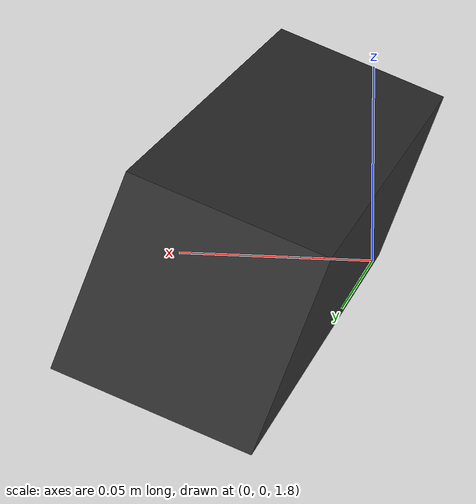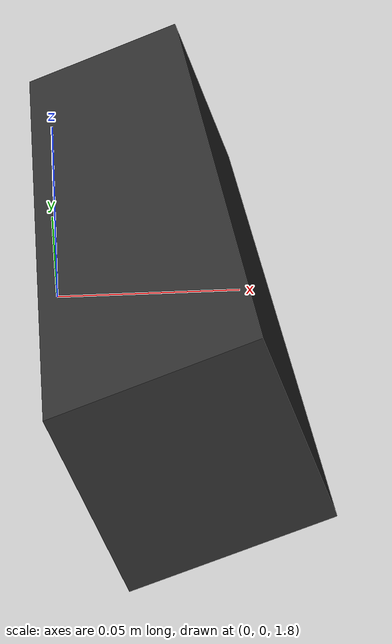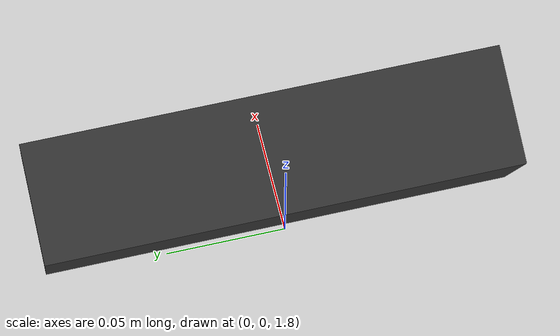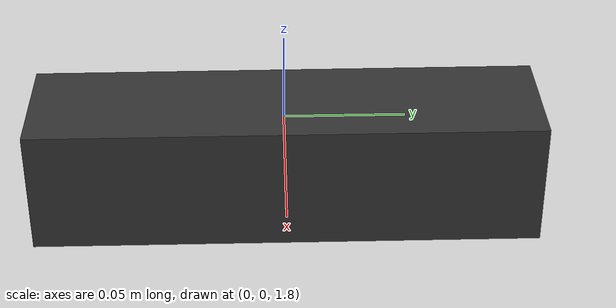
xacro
<?xml version="1.0"?>
<robot xmlns:xacro="http://www.ros.org/wiki/xacro" name="kinect_link">
 <!-- ADD a Kinect sensor: first the visual/collision/inertial box -->
  <link name="world">
      <origin xyz="0.0 0.0 0.0"/>
  </link>
    <link name="base_link">
  </link>

  <joint name="kinect_jnt" type="fixed">
      <parent link="base_link"/>
      <child link="kinect_link"/>
      <!--origin rpy="0.0 1.5708 1.5708" xyz="0 0.0 0.5"/-->
      <axis xyz="0 1 0" />
      <origin xyz="0.027 0.0 1.810" rpy="0.0 1.2 0"/>
  </joint>

    <joint name="world_jnt" type="fixed">
      <parent link="world"/>
      <child link="base_link"/>
  </joint>

    <link name="kinect_link">
      <collision>
          <origin xyz="0 0 0" rpy="0 0 0"/>
          <geometry>
              <!-- coarse model; a simple box -->
              <box size="0.05 0.2 0.05"/>
          </geometry>
      </collision>

      <visual>
          <origin xyz="0 0 0" rpy="0 0 0" />
          <geometry>
              <box size="0.05 0.2 0.05" />
          </geometry>
          <material name="kinect_gray">
              <color rgba="0.2 0.2 0.2 1.0"/>
          </material>
      </visual>

      <inertial>
          <mass value="0.1" />
          <origin xyz="0 0 0" rpy="0 0 0"/>
          <inertia ixx="0.001" ixy="0" ixz="0" iyy="0.001" iyz="0" izz="0.001" />
      </inertial>
  </link>
  <!--the above displays a box meant to imply Kinect-->
  <!--now set the position/orientation of the above box: -->
<!-- end wsn adding kinect link; -->

  <!-- wsn: add kinect sensor emulation -->
<gazebo reference="kinect_link">
    <sensor type="depth" name="openni_camera_camera">
        <always_on>1</always_on>
        <visualize>true</visualize>
        <camera>
            <horizontal_fov>1.047</horizontal_fov>
            <image>
                <width>640</width>
                <height>480</height>
                <format>R8G8B8</format>
            </image>
            <depth_camera>

            </depth_camera>
            <clip>
                <near>0.1</near>
                <far>100</far>
            </clip>
        </camera>
        <plugin name="camera_controller" filename="libgazebo_ros_openni_kinect.so">
            <alwaysOn>true</alwaysOn>
                <updateRate>10.0</updateRate>
                <cameraName>kinect</cameraName>
                <frameName>kinect_pc_frame</frameName>
            <imageTopicName>rgb/image_raw</imageTopicName>
            <depthImageTopicName>depth/image_raw</depthImageTopicName>
            <pointCloudTopicName>depth/points</pointCloudTopicName>
            <cameraInfoTopicName>rgb/camera_info</cameraInfoTopicName>
            <depthImageCameraInfoTopicName>depth/camera_info</depthImageCameraInfoTopicName>
            <pointCloudCutoff>0.4</pointCloudCutoff>
                <hackBaseline>0.07</hackBaseline>
                <distortionK1>0.0</distortionK1>
                <distortionK2>0.0</distortionK2>
                <distortionK3>0.0</distortionK3>
                <distortionT1>0.0</distortionT1>
                <distortionT2>0.0</distortionT2>
            <CxPrime>0.0</CxPrime>
            <Cx>0.0</Cx>
            <Cy>0.0</Cy>
            <focalLength>0.0</focalLength>
            </plugin>
    </sensor>
</gazebo>
</robot>
